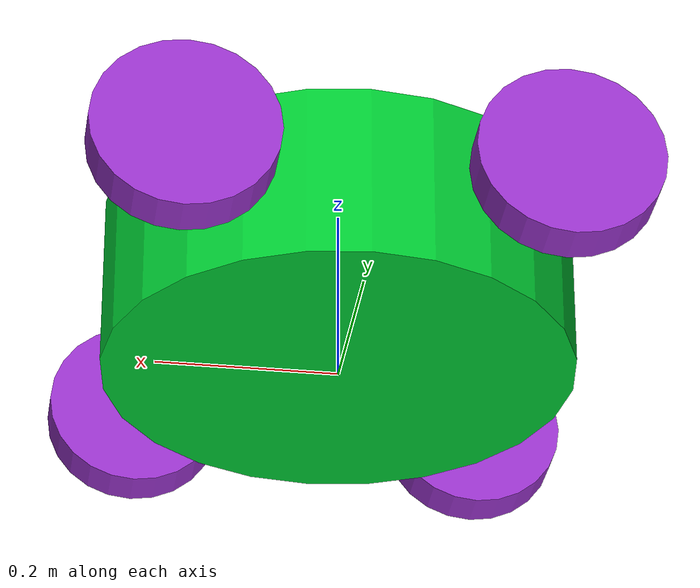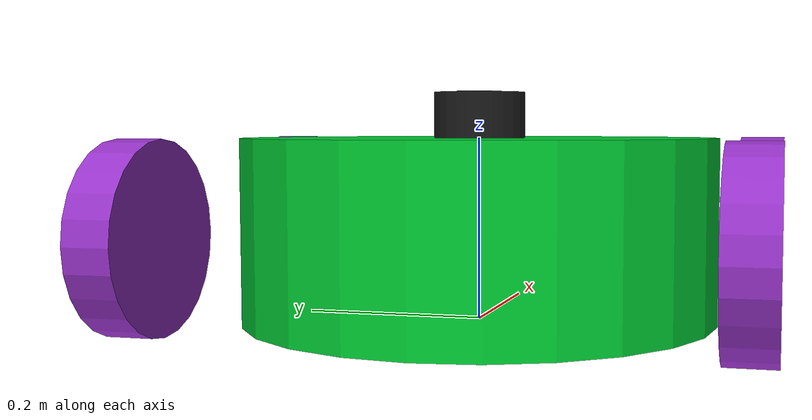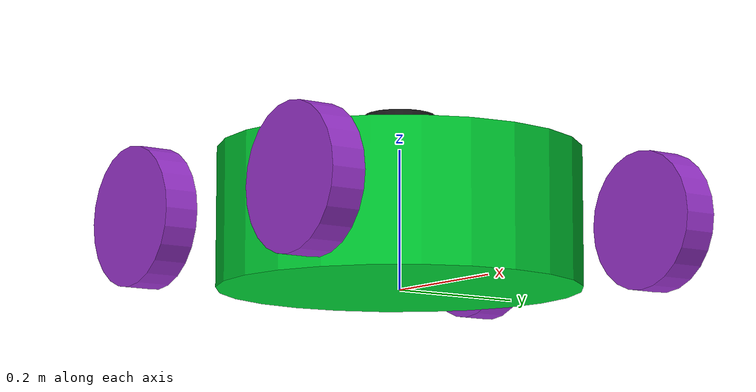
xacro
<?xml version="1.0"?>
<robot xmlns:xacro="http://www.ros.org/wiki/xacro" name="shrek_robot">

  <!-- Properties -->
  <xacro:property name="chassis_length" value="0.6"/>
  <xacro:property name="chassis_width" value="0.52"/>  <!-- Hexagon width -->
  <xacro:property name="chassis_height" value="0.2"/>
  <xacro:property name="chassis_mass" value="20.0"/>

  <xacro:property name="wheel_radius" value="0.1"/>
  <xacro:property name="wheel_width" value="0.05"/>
  <xacro:property name="wheel_mass" value="1.0"/>
  <xacro:property name="wheel_offset_x" value="0.2"/>
  <xacro:property name="wheel_offset_y" value="0.3"/>
  <xacro:property name="wheel_offset_z" value="0.0"/>

  <xacro:property name="lidar_size" value="0.05"/>
  <xacro:property name="lidar_mass" value="0.3"/>

  <!-- Colors -->
  <material name="green">
    <color rgba="0.0 0.8 0.2 1.0"/>
  </material>

  <material name="purple">
    <color rgba="0.6 0.2 0.8 1.0"/>
  </material>

  <material name="black">
    <color rgba="0.1 0.1 0.1 1.0"/>
  </material>

  <!-- Base Link (Hexagonal Chassis) -->
  <link name="base_link">
    <visual>
      <origin xyz="0 0 0" rpy="0 0 0"/>
      <geometry>
        <cylinder length="${chassis_height}" radius="${chassis_width/2}"/>
      </geometry>
      <material name="green"/>
    </visual>
    <collision>
      <origin xyz="0 0 0" rpy="0 0 0"/>
      <geometry>
        <cylinder length="${chassis_height}" radius="${chassis_width/2}"/>
      </geometry>
    </collision>
    <inertial>
      <origin xyz="0 0 0" rpy="0 0 0"/>
      <mass value="${chassis_mass}"/>
      <inertia ixx="${(1/12) * chassis_mass * (3 * (chassis_width/2) * (chassis_width/2) + chassis_height * chassis_height)}"
               ixy="0.0" ixz="0.0"
               iyy="${(1/12) * chassis_mass * (3 * (chassis_width/2) * (chassis_width/2) + chassis_height * chassis_height)}"
               iyz="0.0"
               izz="${(1/2) * chassis_mass * (chassis_width/2) * (chassis_width/2)}"/>
    </inertial>
  </link>

  <!-- Base Footprint -->
  <link name="base_footprint"/>

  <joint name="base_footprint_joint" type="fixed">
    <parent link="base_footprint"/>
    <child link="base_link"/>
    <origin xyz="0 0 ${wheel_radius}" rpy="0 0 0"/>
  </joint>

  <!-- Wheel Macro -->
  <xacro:macro name="wheel" params="prefix reflect_x reflect_y">
    <link name="${prefix}_wheel">
      <visual>
        <origin xyz="0 0 0" rpy="${pi/2} 0 0"/>
        <geometry>
          <cylinder length="${wheel_width}" radius="${wheel_radius}"/>
        </geometry>
        <material name="purple"/>
      </visual>
      <collision>
        <origin xyz="0 0 0" rpy="${pi/2} 0 0"/>
        <geometry>
          <cylinder length="${wheel_width}" radius="${wheel_radius}"/>
        </geometry>
      </collision>
      <inertial>
        <origin xyz="0 0 0" rpy="${pi/2} 0 0"/>
        <mass value="${wheel_mass}"/>
        <inertia ixx="${(1/12) * wheel_mass * (3 * wheel_radius * wheel_radius + wheel_width * wheel_width)}"
                 ixy="0.0" ixz="0.0"
                 iyy="${(1/12) * wheel_mass * (3 * wheel_radius * wheel_radius + wheel_width * wheel_width)}"
                 iyz="0.0"
                 izz="${(1/2) * wheel_mass * wheel_radius * wheel_radius}"/>
      </inertial>
    </link>

    <joint name="${prefix}_wheel_joint" type="continuous">
      <parent link="base_link"/>
      <child link="${prefix}_wheel"/>
      <origin xyz="${reflect_x * wheel_offset_x} ${reflect_y * wheel_offset_y} ${wheel_offset_z}" rpy="0 0 0"/>
      <axis xyz="0 1 0"/>
    </joint>
  </xacro:macro>

  <!-- Create 4 wheels -->
  <xacro:wheel prefix="front_left" reflect_x="1" reflect_y="1"/>
  <xacro:wheel prefix="front_right" reflect_x="1" reflect_y="-1"/>
  <xacro:wheel prefix="rear_left" reflect_x="-1" reflect_y="1"/>
  <xacro:wheel prefix="rear_right" reflect_x="-1" reflect_y="-1"/>

  <!-- LiDAR Sensor -->
  <link name="lidar_link">
    <visual>
      <origin xyz="0 0 0" rpy="0 0 0"/>
      <geometry>
        <cylinder length="${lidar_size}" radius="${lidar_size}"/>
      </geometry>
      <material name="black"/>
    </visual>
    <collision>
      <origin xyz="0 0 0" rpy="0 0 0"/>
      <geometry>
        <cylinder length="${lidar_size}" radius="${lidar_size}"/>
      </geometry>
    </collision>
    <inertial>
      <origin xyz="0 0 0" rpy="0 0 0"/>
      <mass value="${lidar_mass}"/>
      <inertia ixx="${(1/12) * lidar_mass * (3 * lidar_size * lidar_size + lidar_size * lidar_size)}"
               ixy="0.0" ixz="0.0"
               iyy="${(1/12) * lidar_mass * (3 * lidar_size * lidar_size + lidar_size * lidar_size)}"
               iyz="0.0"
               izz="${(1/2) * lidar_mass * lidar_size * lidar_size}"/>
    </inertial>
  </link>

  <joint name="lidar_joint" type="fixed">
    <parent link="base_link"/>
    <child link="lidar_link"/>
    <origin xyz="0 0 ${chassis_height/2 + lidar_size/2}" rpy="0 0 0"/>
  </joint>

</robot>
